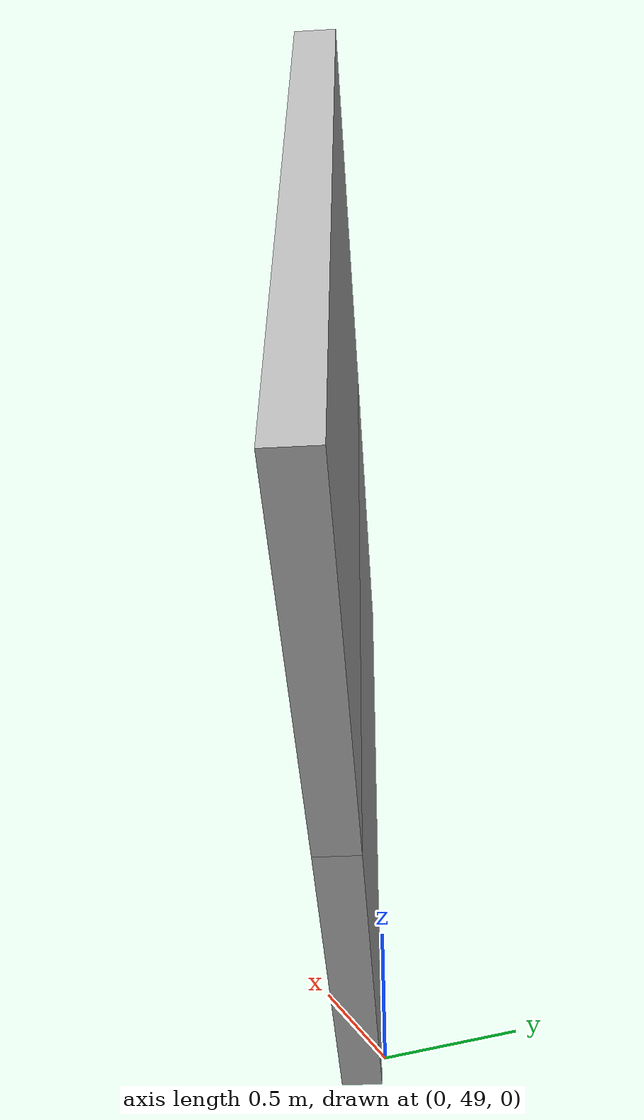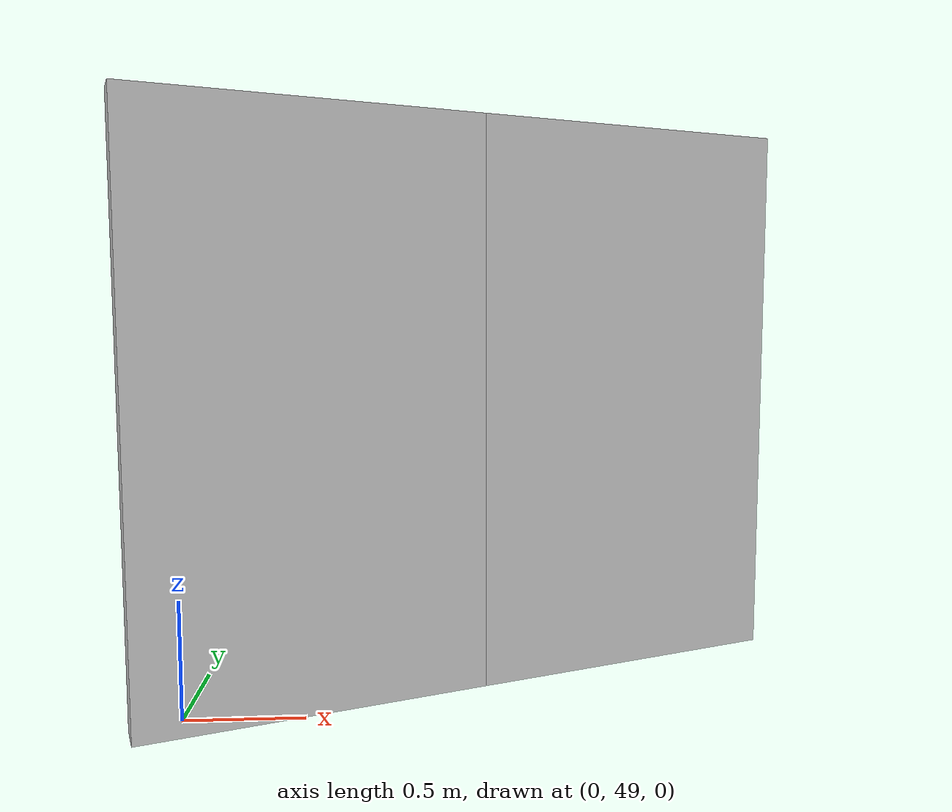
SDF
<?xml version="1.0" ?>
<sdf version="1.6">
  <model name="sps_1745">
    <pose frame="">0 0 0 0 -0 0</pose>
    <static>1</static>
    <self_collide>0</self_collide>
    <allow_auto_disable>0</allow_auto_disable>
    <link name="Wall3089">
      <kinematic>0</kinematic>
      <gravity>1</gravity>
      <self_collide>0</self_collide>
      <collision name="collision">
        <geometry>
          <box>
            <size>1.49655 0.15 2.5</size>
          </box>
        </geometry>
        <pose frame="">0 0 0 0 -0 0</pose>
      </collision>
      <visual name="visual">
        <geometry>
          <box>
            <size>1.49655 0.15 2.5</size>
          </box>
        </geometry>
        <pose frame="">0 0 0 0 -0 0</pose>
        <cast_shadows>1</cast_shadows>
        <transparency>0.0</transparency>
      </visual>
      <pose frame="">1.93825 49.6249 1.25 0 0 -2.78419</pose>
    </link>
    <link name="Wall3090">
      <kinematic>0</kinematic>
      <gravity>1</gravity>
      <self_collide>0</self_collide>
      <collision name="collision">
        <geometry>
          <box>
            <size>1.49643 0.15 2.5</size>
          </box>
        </geometry>
        <pose frame="">0 0 0 0 -0 0</pose>
      </collision>
      <visual name="visual">
        <geometry>
          <box>
            <size>1.49643 0.15 2.5</size>
          </box>
        </geometry>
        <pose frame="">0 0 0 0 -0 0</pose>
        <cast_shadows>1</cast_shadows>
        <transparency>0.0</transparency>
      </visual>
      <pose frame="">0.536765 49.1002 1.25 0 0 -2.78255</pose>
    </link>
  </model>
</sdf>
